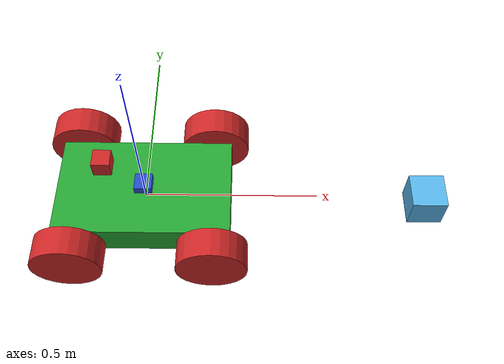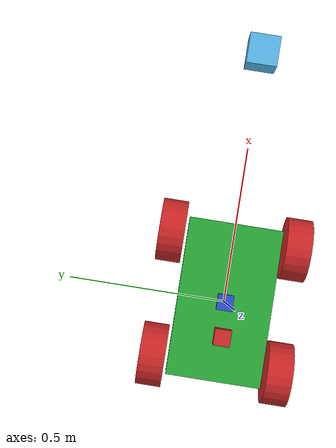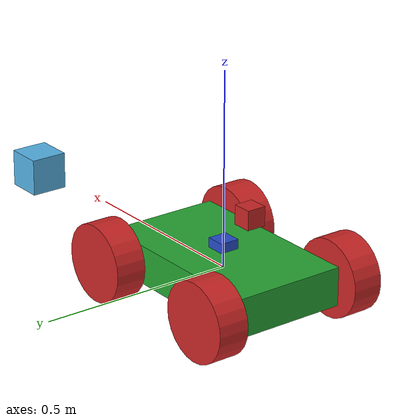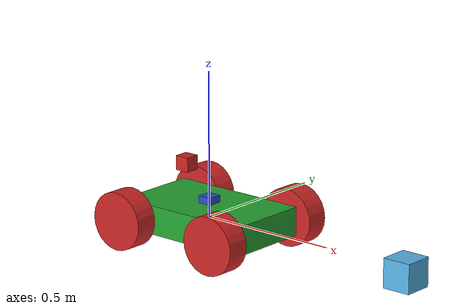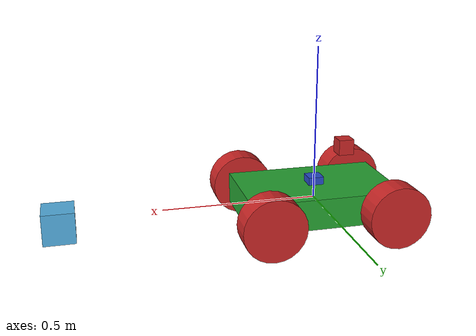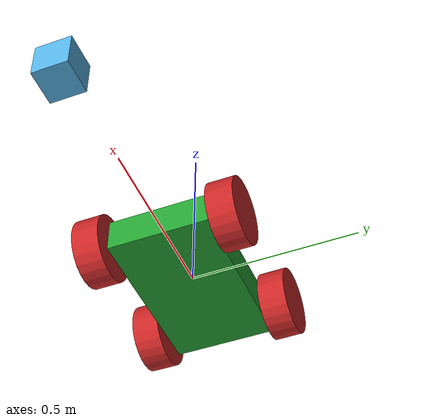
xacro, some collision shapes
<?xml version="1.0"?>
<robot name="steer_bot" xmlns:xacro="http://wiki.ros.org/xacro">
  <!-- Include xacro for inertials, materials and wheels -->
  <xacro:include filename="$(find steer_bot_description)/urdf/wheel.xacro"/>

  <xacro:property name="robot_namespace" value="/steer_bot"/>
  <!-- Gazebo plugins -->
  <gazebo>
    <!-- Load ros_control plugin using the steer_bot_hardware_gazebo
    implementation of the hardware_interface::RobotHW -->
    <plugin name="gazebo_ros_control" filename="libgazebo_ros_control.so">
      <robotNamespace>${robot_namespace}</robotNamespace>
      <robotSimType>steer_bot_hardware_gazebo/SteerBotHardwareGazebo</robotSimType>
      <legacyModeNS>false</legacyModeNS>
    </plugin>

    <plugin name="p3d_base_controller" filename="libgazebo_ros_p3d.so">
      <alwaysOn>true</alwaysOn>
      <updateRate>50.0</updateRate>
      <bodyName>base_link</bodyName>
      <topicName>pose_ground_truth</topicName>
      <gaussianNoise>0.00</gaussianNoise>
      <frameName>world</frameName>
      <xyzOffsets>0 0 0</xyzOffsets>
      <rpyOffsets>0 0 0</rpyOffsets>
    </plugin>
  </gazebo>

  <!-- Math constants -->
  <xacro:property name="deg_to_rad" value="0.01745329251994329577"/>

  <!-- Robot base dimensions -->
  <xacro:property name="base_length" value="0.5" />
  <xacro:property name="base_width" value="0.3" />
  <xacro:property name="base_height" value="0.1" />
  <xacro:property name="base_mass" value="5" />

  <!-- Wheel link dimensions -->
  <xacro:property name="wheel_radius" value="0.1" />
  <xacro:property name="wheel_thickness" value="0.08" />
  <xacro:property name="wheel_mass" value="1" />

  <!-- Steering link dimensions -->
  <xacro:property name="steer_radius" value="0.05" />
  <xacro:property name="steer_thickness" value="0.02" />
  <xacro:property name="steer_mass" value="1" />

  <!-- Axle positions -->
  <xacro:property name="axle_offset" value="0.05" />
  <xacro:property name="steer_offset" value="0.02" />

  <!-- Base link -->
  <link name="base_link">
    <visual>
      <origin xyz="0 0 0" rpy="0 0 0"/>
      <geometry>
        <box size="${base_length} ${base_width} ${base_height}"/>
      </geometry>
      <material name="green" />
    </visual>
    <collision>
      <origin xyz="0 0 0" rpy="0 0 0"/>
      <geometry>
        <box size="${base_length} ${base_width} ${base_height}"/>
      </geometry>
    </collision>
    <xacro:solid_cuboid_inertial
        rpy="0 0 0" xyz="0 0 0"
        mass="${base_mass}"
        x="${base_length}" y="${base_width}" z="${base_height}" />
  </link>

  <!-- Front steer and rear wheel joints required for ackermann_steering_controller -->
  <xacro:front_steer
    name="front"
    parent="base"
    steer_radius="${steer_radius}"
    steer_thickness="${steer_thickness}"
    steer_mass="${steer_mass}"
    base_length="${base_length}"
    base_width="${base_width}"
    axle_offset="${axle_offset}"
    steer_height="${wheel_radius+steer_offset}">
  </xacro:front_steer>

  <xacro:rear_wheel
    name="rear"
    parent="base"
    wheel_radius="${wheel_radius/4}"
    wheel_thickness="${wheel_thickness/2}"
    wheel_mass="${wheel_mass/32}">
    <origin xyz="${-base_length/2+axle_offset} 0 0" rpy="${-90 * deg_to_rad} 0 0"/>
  </xacro:rear_wheel>

  <!-- Steerable front wheels -->
  <xacro:front_wheel_lr
    name="front_right"
    parent="base"
    reflect="-1"
    wheel_radius="${wheel_radius}"
    wheel_thickness="${wheel_thickness}"
    wheel_mass="${wheel_mass}"
    steer_radius="${steer_radius}"
    steer_thickness="${steer_thickness}"
    steer_mass="${steer_mass}"
    base_length="${base_length}"
    base_width="${base_width}"
    axle_offset="${axle_offset}"
    steer_height="${wheel_radius+steer_offset}">
  </xacro:front_wheel_lr>
  <xacro:front_wheel_lr
    name="front_left"
    parent="base"
    reflect="1"
    wheel_radius="${wheel_radius}"
    wheel_thickness="${wheel_thickness}"
    wheel_mass="${wheel_mass}"
    steer_radius="${steer_radius}"
    steer_thickness="${steer_thickness}"
    steer_mass="${steer_mass}"
    base_length="${base_length}"
    base_width="${base_width}"
    axle_offset="${axle_offset}"
    steer_height="${wheel_radius+steer_offset}">
  </xacro:front_wheel_lr>

  <!-- Rear wheels -->
  <xacro:rear_wheel_lr
    name="rear_right"
    parent="base"
    wheel_radius="${wheel_radius}"
    wheel_thickness="${wheel_thickness}"
    wheel_mass="${wheel_mass}">
    <origin xyz="${-base_length/2+axle_offset} ${-base_width/2-axle_offset} 0" rpy="${-90 * deg_to_rad} 0 0"/>
  </xacro:rear_wheel_lr>
  <xacro:rear_wheel_lr
    name="rear_left"
    parent="base"
    wheel_radius="${wheel_radius}"
    wheel_thickness="${wheel_thickness}"
    wheel_mass="${wheel_mass}">
    <origin xyz="${-base_length/2+axle_offset} ${+base_width/2+axle_offset} 0" rpy="${-90 * deg_to_rad} 0 0"/>
  </xacro:rear_wheel_lr>

  <!-- Colour -->
  <gazebo reference="base_link">
    <material>Gazebo/Green</material>
  </gazebo>

<!-- LIDAR -->

<link name="lidar_link">
    <collision>
      <origin xyz="0.5 0 0" rpy="0 0 0"/>
      <geometry>
    <box size="0.1 0.1 0.1"/>
      </geometry>
    </collision>

    <visual>
      <origin xyz="0 0 0" rpy="0 0 0"/>
      <geometry>
        <mesh filename="package://steer_bot_description/hokuyo.dae"/>
      </geometry>
    </visual>

    <inertial>
      <mass value="1e-5" />
      <origin xyz="0 0 0" rpy="0 0 0"/>
      <inertia ixx="1e-6" ixy="0" ixz="0" iyy="1e-6" iyz="0" izz="1e-6" />
    </inertial>
  </link>

<joint name="lidar_link_joint" type="fixed">
    <axis xyz="0 0 0" />
    <origin xyz="0.32 0 -0.01" rpy="0 0 0"/>
    <parent link="base_link"/>
    <child link="lidar_link"/>
  </joint>

   <!-- hokuyo -->
  <gazebo reference="lidar_link">
    <sensor type="gpu_ray" name="lidar_sensor">
      <pose>0 0 0 0 0 0</pose>
      <visualize>true</visualize>
      <update_rate>40</update_rate>
      <ray>
        <scan>
          <horizontal>
            <samples>720</samples>
            <resolution>1</resolution>
            <min_angle>-1.570796</min_angle>
            <max_angle>1.570796</max_angle>
          </horizontal>
        </scan>
        <range>
          <min>0.10</min>
          <max>30.0</max>
          <resolution>0.01</resolution>
        </range>
        <noise>
          <type>gaussian</type>
          <mean>0.0</mean>
          <stddev>0.01</stddev>
        </noise>
      </ray>
      <plugin name="gazebo_ros_head_hokuyo_controller" filename="libgazebo_ros_gpu_laser.so">
        <topicName>/rrbot/laser/scan</topicName>
        <frameName>lidar_link</frameName>
      </plugin>
    </sensor>
  </gazebo>

<!-- FINE LIDAR -->

<!-- CAMERA -->
<xacro:property name="camera_dim" value="0.05" /> <!-- Size of square 'camera' box -->
<xacro:property name="camera_xpos"  value="-0.1" />
<xacro:property name="camera_ypos"  value="0" />
<xacro:property name="camera_zpos"  value="${base_height/2 + 0.12}" />

 <joint name="camera_joint" type="fixed">
    <axis xyz="0 1 0" />
    <origin xyz="${camera_xpos} ${camera_ypos} ${camera_zpos}" rpy="0 0 0"/>
    <parent link="base_link"/>
    <child link="camera_link"/>
  </joint>

  <!-- Camera -->
  <link name="camera_link">
    <collision>
      <origin xyz="0 0 0" rpy="0 0 0"/>
      <geometry>
    <box size="${camera_dim} ${camera_dim} ${camera_dim}"/>
      </geometry>
    </collision>

    <visual>
      <origin xyz="0 0 0" rpy="0 0 0"/>
      <geometry>
    <box size="${camera_dim} ${camera_dim} ${camera_dim}"/>
      </geometry>
      <material name="red"/>
    </visual>

    <inertial>
      <mass value="1e-5" />
      <origin xyz="0 0 0" rpy="0 0 0"/>
      <inertia ixx="1e-6" ixy="0" ixz="0" iyy="1e-6" iyz="0" izz="1e-6" />
    </inertial>
  </link>

  <!-- camera -->
  <gazebo reference="camera_link">
    <sensor type="camera" name="camera1">
      <update_rate>30.0</update_rate>
      <camera name="head">
        <horizontal_fov>1.3962634</horizontal_fov>
        <image>
          <width>800</width>
          <height>800</height>
          <format>R8G8B8</format>
        </image>
        <clip>
          <near>0.02</near>
          <far>300</far>
        </clip>
        <noise>
          <type>gaussian</type>
          <!-- Noise is sampled independently per pixel on each frame.
               That pixel's noise value is added to each of its color
               channels, which at that point lie in the range [0,1]. -->
          <mean>0.0</mean>
          <stddev>0.007</stddev>
        </noise>
      </camera>
      <plugin name="camera_controller" filename="libgazebo_ros_camera.so">
        <alwaysOn>true</alwaysOn>
        <updateRate>0.0</updateRate>
        <cameraName>rrbot/camera1</cameraName>
        <imageTopicName>image_raw</imageTopicName>
        <cameraInfoTopicName>camera_info</cameraInfoTopicName>
        <frameName>camera_link</frameName>
        <hackBaseline>0.07</hackBaseline>
        <distortionK1>0.0</distortionK1>
        <distortionK2>0.0</distortionK2>
        <distortionK3>0.0</distortionK3>
        <distortionT1>0.0</distortionT1>
        <distortionT2>0.0</distortionT2>
      </plugin>
    </sensor>
  </gazebo>

<!-- IMU -->

  <!-- Imu -->
  <xacro:property name="imu_xsize" value="0.05" />
  <xacro:property name="imu_ysize" value="0.05" />
  <xacro:property name="imu_zsize" value="0.05" />
  <xacro:property name="imu_mass"  value="0.1" />
  <xacro:property name="imu_xpos"  value="0" />
  <xacro:property name="imu_ypos"  value="0.00" />
  <xacro:property name="imu_zpos"  value="${base_height/2}" />

  <!-- Imu -->
  <link name="imu_box" >
    <visual>
      <material name="blue" />
      <geometry>
        <box size="${imu_xsize} ${imu_ysize} ${imu_zsize}" />
      </geometry>
    </visual>
    <collision>
      <geometry>
        <box size="${imu_xsize} ${imu_ysize} ${imu_zsize}" />
      </geometry>
    </collision>
    <xacro:solid_cuboid_inertial
        rpy="0 0 0" xyz="${imu_xsize} ${imu_ysize} ${imu_zsize}"
        mass="${imu_mass}"
        x="${imu_xpos}" y="${imu_ypos}" z="${imu_zpos}" />
  </link>

  <joint name="joint_imu_box" type="fixed">
    <origin xyz="${imu_xpos} ${imu_ypos} ${imu_zpos}" rpy="0 0 0" />
    <parent link="base_link" />
    <child link="imu_box" />
  </joint>

  <gazebo reference="imu_box">
    <material>Gazebo/White</material>
    <gravity>true</gravity>
    <sensor name="imu_sensor" type="imu">
      <always_on>true</always_on>
      <update_rate>100</update_rate>
      <visualize>true</visualize>
      <topic>__default_topic__</topic>
      <plugin filename="libgazebo_ros_imu_sensor.so" name="imu_plugin" >
        <topicName>imu</topicName>
        <bodyName>imu_link</bodyName>
        <updateRateHZ>10.0</updateRateHZ>
        <gaussianNoise>2.89e-08</gaussianNoise>
        <xyzOffset>0 0 0</xyzOffset>
        <rpyOffset>0 0 0</rpyOffset>
        <frameName>imu_link</frameName>
        <inertialOrientationAsReference>false</inertialOrientationAsReference>
      </plugin>
      <pose>0 0 0 0 0 0</pose>
    </sensor>
  </gazebo>

</robot>

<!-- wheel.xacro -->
<robot name="wheel" xmlns:xacro="http://wiki.ros.org/xacro">
  <!-- Include xacro for materials and inertials -->
  <xacro:include filename="$(find steer_bot_description)/urdf/materials.xacro"/>
  <xacro:include filename="$(find steer_bot_description)/urdf/inertials.xacro"/>

  <!-- Properties -->
  <xacro:property name="steer_effort" value="10.0"/>
  <xacro:property name="steer_velocity" value="5.0"/>
  <xacro:property name="steer_limit_deg" value="45.0"/>

  <!-- Bicycle model front steering link (required for steer_drive_controller) -->
  <xacro:macro name="front_steer"
    params="
      name
      parent
      steer_radius
      steer_thickness
      steer_mass
      base_length
      base_width
      axle_offset
      steer_height">
    <link name="${name}_steer_link">
      <collision>
        <origin xyz="0 0 0" rpy="0 0 0"/>
        <geometry>
          <cylinder radius="${steer_radius}" length="${steer_thickness}"/>
        </geometry>
      </collision>
      <xacro:solid_cylinder_inertial
          rpy="0 0 0" xyz="0 0 0"
          mass="${steer_mass}"
          radius="${steer_radius}" length="${steer_thickness}" />
    </link>

    <joint name="${name}_steer_joint" type="revolute">
      <parent link="${parent}_link"/>
      <child link="${name}_steer_link"/>
      <origin xyz="${base_length/2-axle_offset} 0 ${steer_height}" rpy="0 0 0"/>
      <axis xyz="0 0 1"/>
      <limit effort="${steer_effort}"
             lower="${-180.0 * deg_to_rad}" upper="${180.0 * deg_to_rad}"
             velocity="${steer_velocity}"/>
    </joint>

    <transmission name="${name}_steer_joint_trans">
      <type>transmission_interface/SimpleTransmission</type>
      <actuator name="${name}_steer_joint_motor">
        <mechanicalReduction>1</mechanicalReduction>
        <hardwareInterface>hardware_interface/PositionJointInterface</hardwareInterface>
      </actuator>
      <joint name="${name}_steer_joint">
        <hardwareInterface>hardware_interface/PositionJointInterface</hardwareInterface>
      </joint>
    </transmission>

    <gazebo reference="${name}_steer_link">
      <material>Gazebo/Yellow</material>
    </gazebo>
  </xacro:macro>

  <!-- Car steering model front (steerable) wheel links (left/right) -->
  <xacro:macro name="front_wheel_lr"
    params="
      name
      parent
      reflect
      wheel_radius
      wheel_thickness
      wheel_mass
      steer_radius
      steer_thickness
      steer_mass
      base_length
      base_width
      axle_offset
      steer_height">
    <link name="${name}_steer_link">
      <collision>
        <origin xyz="0 0 0" rpy="0 0 0"/>
        <geometry>
          <cylinder radius="${steer_radius}" length="${steer_thickness}"/>
        </geometry>
      </collision>
      <xacro:solid_cylinder_inertial
          rpy="0 0 0" xyz="0 0 0"
          mass="${steer_mass}"
          radius="${steer_radius}" length="${steer_thickness}" />
    </link>

    <joint name="${name}_steer_joint" type="revolute">
      <parent link="${parent}_link"/>
      <child link="${name}_steer_link"/>
      <origin xyz="${base_length/2-axle_offset} ${reflect*(base_width/2+axle_offset)} ${steer_height}" rpy="0 0 0"/>
      <axis xyz="0 0 1"/>
      <limit effort="${steer_effort}"
             lower="${steer_limit_deg * deg_to_rad * -1.0}" upper="${steer_limit_deg * deg_to_rad}"
             velocity="${steer_velocity}"/>
    </joint>

    <link name="${name}_wheel_link">
      <visual>
        <origin xyz="0 0 0" rpy="0 0 0"/>
        <geometry>
          <cylinder radius="${wheel_radius}" length="${wheel_thickness}"/>
        </geometry>
        <material name="red" />
      </visual>
      <collision>
        <origin xyz="0 0 0" rpy="0 0 0"/>
        <geometry>
          <cylinder radius="${wheel_radius}" length="${wheel_thickness}"/>
        </geometry>
      </collision>
      <xacro:solid_cylinder_inertial
          rpy="0 0 0" xyz="0 0 0"
          mass="${wheel_mass}"
          radius="${wheel_radius}" length="${wheel_thickness}" />
    </link>

    <joint name="${name}_wheel_joint" type="continuous">
      <parent link="${name}_steer_link"/>
      <child link="${name}_wheel_link"/>
      <origin xyz="0 0 ${-steer_height}" rpy="${-90 * deg_to_rad} 0 0"/>
      <axis xyz="0 0 1"/>
    </joint>

    <transmission name="${name}_steer_joint_trans">
      <type>transmission_interface/SimpleTransmission</type>
      <actuator name="${name}_steer_joint_motor">
        <mechanicalReduction>1</mechanicalReduction>
        <hardwareInterface>hardware_interface/PositionJointInterface</hardwareInterface>
      </actuator>
      <joint name="${name}_steer_joint">
        <hardwareInterface>hardware_interface/PositionJointInterface</hardwareInterface>
      </joint>
    </transmission>

    <transmission name="${name}_wheel_joint_trans">
      <type>transmission_interface/SimpleTransmission</type>
      <actuator name="${name}_wheel_joint_motor">
        <mechanicalReduction>1</mechanicalReduction>
        <hardwareInterface>hardware_interface/VelocityJointInterface</hardwareInterface>
      </actuator>
      <joint name="${name}_wheel_joint">
        <hardwareInterface>hardware_interface/VelocityJointInterface</hardwareInterface>
      </joint>
    </transmission>

    <gazebo reference="${name}_steer_link">
      <material>Gazebo/Blue</material>
    </gazebo>

    <gazebo reference="${name}_wheel_link">
      <material>Gazebo/Red</material>
    </gazebo>
  </xacro:macro>

  <!-- Bicycle model rear wheel link (required for steer_drive_controller) -->
  <xacro:macro name="rear_wheel"
    params="
      name
      parent
      wheel_radius
      wheel_thickness
      wheel_mass
      *origin">
    <link name="${name}_wheel_link">
      <visual>
        <origin xyz="0 0 0" rpy="0 0 0"/>
        <geometry>
          <cylinder radius="${wheel_radius}" length="${wheel_thickness}"/>
        </geometry>
        <material name="yellow" />
      </visual>
      <collision>
        <origin xyz="0 0 0" rpy="0 0 0"/>
        <geometry>
          <cylinder radius="${wheel_radius}" length="${wheel_thickness}"/>
        </geometry>
      </collision>
      <xacro:solid_cylinder_inertial
          rpy="0 0 0" xyz="0 0 0"
          mass="${wheel_mass}"
          radius="${wheel_radius}" length="${wheel_thickness}" />
    </link>

    <joint name="${name}_wheel_joint" type="continuous">
      <parent link="${parent}_link"/>
      <child link="${name}_wheel_link"/>
      <xacro:insert_block name="origin"/>
      <axis xyz="0 0 1"/>
    </joint>

    <transmission name="${name}_wheel_joint_trans">
      <type>transmission_interface/SimpleTransmission</type>
      <actuator name="${name}_wheel_joint_motor">
        <mechanicalReduction>1</mechanicalReduction>
        <hardwareInterface>hardware_interface/VelocityJointInterface</hardwareInterface>
      </actuator>
      <joint name="${name}_wheel_joint">
        <hardwareInterface>hardware_interface/VelocityJointInterface</hardwareInterface>
      </joint>
    </transmission>

    <gazebo reference="${name}_wheel_link">
      <material>Gazebo/Yellow</material>
    </gazebo>
  </xacro:macro>

  <!-- Bicycle model front wheel link (passive - no transmission) -->
  <xacro:macro name="front_wheel"
    params="
      name
      parent
      wheel_radius
      wheel_thickness
      wheel_mass
      *origin">
    <link name="${name}_wheel_link">
      <visual>
        <origin xyz="0 0 0" rpy="0 0 0"/>
        <geometry>
          <cylinder radius="${wheel_radius}" length="${wheel_thickness}"/>
        </geometry>
        <material name="yellow" />
      </visual>
      <collision>
        <origin xyz="0 0 0" rpy="0 0 0"/>
        <geometry>
          <cylinder radius="${wheel_radius}" length="${wheel_thickness}"/>
        </geometry>
      </collision>
      <xacro:solid_cylinder_inertial
          rpy="0 0 0" xyz="0 0 0"
          mass="${wheel_mass}"
          radius="${wheel_radius}" length="${wheel_thickness}" />
    </link>

    <joint name="${name}_wheel_joint" type="continuous">
      <parent link="${parent}_link"/>
      <child link="${name}_wheel_link"/>
      <xacro:insert_block name="origin"/>
      <axis xyz="0 0 1"/>
    </joint>

    <gazebo reference="${name}_wheel_link">
      <material>Gazebo/Yellow</material>
    </gazebo>

    <gazebo reference="${name}_wheel_joint">
      <provideFeedback>true</provideFeedback>
    </gazebo>
  </xacro:macro>

  <!-- Car steering model rear wheel links (left/right) -->
  <xacro:macro name="rear_wheel_lr"
    params="
      name
      parent
      wheel_radius
      wheel_thickness
      wheel_mass
      *origin">
    <link name="${name}_wheel_link">
      <visual>
        <origin xyz="0 0 0" rpy="0 0 0"/>
        <geometry>
          <cylinder radius="${wheel_radius}" length="${wheel_thickness}"/>
        </geometry>
        <material name="red" />
      </visual>
      <collision>
        <origin xyz="0 0 0" rpy="0 0 0"/>
        <geometry>
          <cylinder radius="${wheel_radius}" length="${wheel_thickness}"/>
        </geometry>
      </collision>
      <xacro:solid_cylinder_inertial
          rpy="0 0 0" xyz="0 0 0"
          mass="${wheel_mass}"
          radius="${wheel_radius}" length="${wheel_thickness}" />
    </link>

    <joint name="${name}_wheel_joint" type="continuous">
      <parent link="${parent}_link"/>
      <child link="${name}_wheel_link"/>
      <xacro:insert_block name="origin"/>
      <axis xyz="0 0 1"/>
    </joint>

    <transmission name="${name}_wheel_joint_trans">
      <type>transmission_interface/SimpleTransmission</type>
      <actuator name="${name}_wheel_joint_motor">
        <mechanicalReduction>1</mechanicalReduction>
        <hardwareInterface>hardware_interface/VelocityJointInterface</hardwareInterface>
      </actuator>
      <joint name="${name}_wheel_joint">
        <hardwareInterface>hardware_interface/VelocityJointInterface</hardwareInterface>
      </joint>
    </transmission>

    <gazebo reference="${name}_wheel_link">
      <material>Gazebo/Red</material>
    </gazebo>
  </xacro:macro>
</robot>
